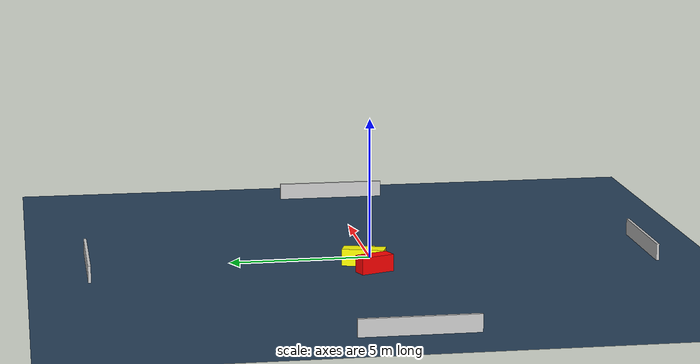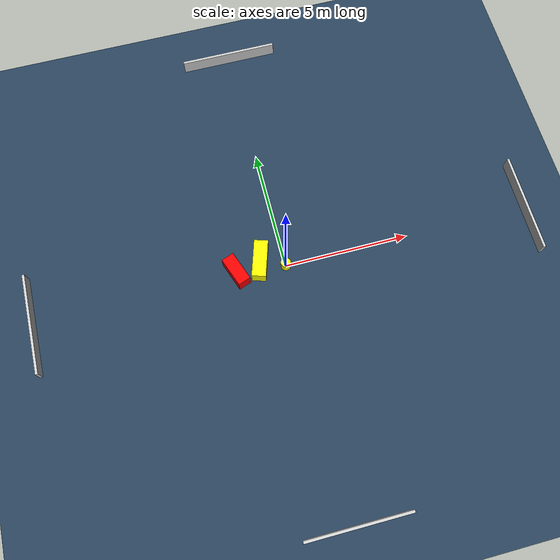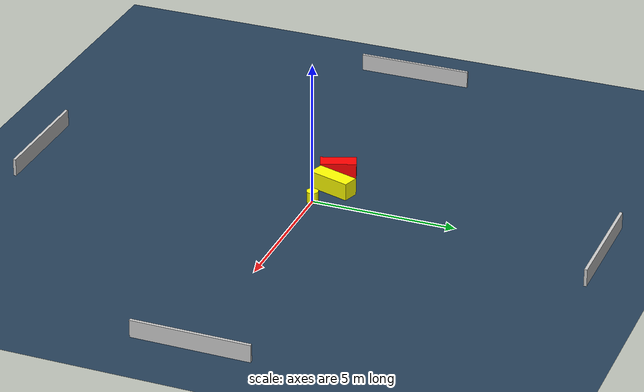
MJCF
<?xml version="1.0" ?>
<mujoco model="generated_environment">
  <option timestep="0.01" integrator="RK4" cone="elliptic"/>
  <default>
    <geom density="1"/>
  </default>
  <asset>
    <texture builtin="gradient" height="3072" name="skybox" rgb1="0.3 0.5 0.7" rgb2="0 0 0" type="skybox" width="512"/>
    <texture builtin="checker" height="300" name="groundplane" rgb1="0.2 0.3 0.4" rgb2="0.1 0.2 0.3" type="2d" width="300"/>
    <material name="groundplane" reflectance="0.2" texrepeat="5 5" texture="groundplane"/>
  </asset>
  <worldbody>
    <light dir="0 0 -1" directional="true" pos="0 0 1.5"/>
    <geom condim="3" friction="0.5 0.005 0.001" material="groundplane" name="floor" pos="0 0 0" size="0 0 0.05" type="plane"/>
    <body name="walls">
      <geom name="wall_1" condim="4" pos="-10.0 0.0 0.3" rgba="0.800000011920929 0.800000011920929 0.800000011920929 1.0" size="0.05 2.0 0.3" type="box"/>
      <geom name="wall_2" condim="4" pos="10.0 0.0 0.3" rgba="0.800000011920929 0.800000011920929 0.800000011920929 1.0" size="0.05 2.0 0.3" type="box"/>
      <geom name="wall_3" condim="4" pos="0.0 -10.0 0.3" rgba="0.800000011920929 0.800000011920929 0.800000011920929 1.0" size="2.0 0.05 0.3" type="box"/>
      <geom name="wall_4" condim="4" pos="0.0 10.0 0.3" rgba="0.800000011920929 0.800000011920929 0.800000011920929 1.0" size="2.0 0.05 0.3" type="box"/>
    </body>
    <body name="robot">
      <joint name="joint_x" type="slide" pos="0 0 0" axis="1 0 0"/>
      <joint name="joint_y" type="slide" pos="0 0 0" axis="0 1 0"/>
      <geom name="robot" type="cylinder" pos="0.0 0.0 0.2" size="0.2 0.2 0.0" mass="5.0" friction="1.0 0.005 0.0001" condim="4" rgba="1.0 1.0 0.0 1.0"/>
    </body>
    <body name="obstacle_1_movable">
      <geom name="obstacle_1_movable" condim="4" pos="-0.9511651193238964 0.36548879172079807 0.3" euler="0 0 162.58356844329708" friction="0.0 0.005 0.001" rgba="1.0 1.0 0.0 1.0" size="0.27740286117229224 0.7479140784146661 0.3" type="box" mass="0.1"/>
      <joint type="free"/>
    </body>
    <body name="obstacle_2_static">
      <geom name="obstacle_2_static" condim="4" pos="-1.9600991689663314 0.15749805732534153 0.3" euler="0 0 200.08968167037193" friction="0.0 0.005 0.001" rgba="1.0 0.0 0.0 1.0" size="0.2590084166948081 0.6108273964363959 0.3" type="box"/>
    </body>
  </worldbody>
  <actuator>
    <motor name="actuator_x" joint="joint_x" gear="1" ctrlrange="-1 1"/>
    <motor name="actuator_y" joint="joint_y" gear="1" ctrlrange="-1 1"/>
  </actuator>
</mujoco>
